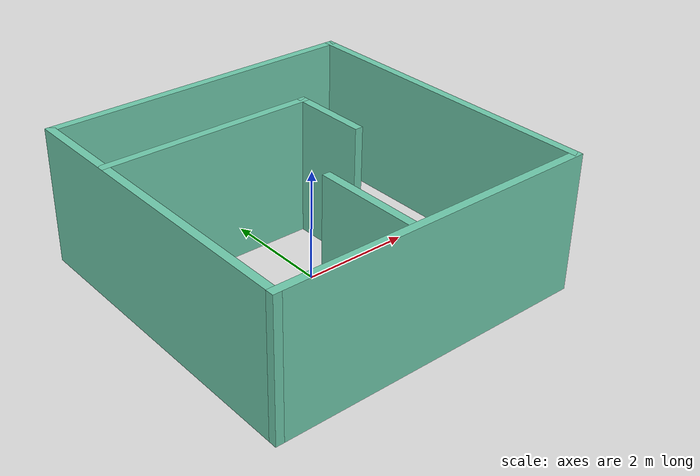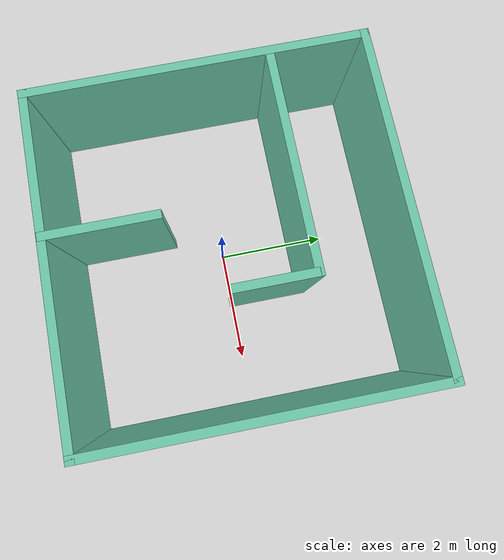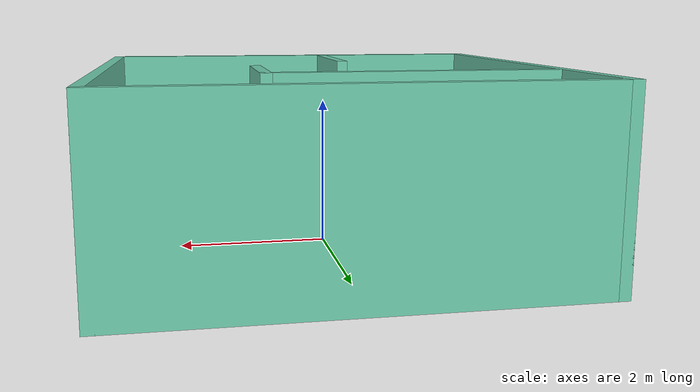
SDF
<?xml version='1.0'?>
<sdf version='1.7'>
  <model name='training_place'>
    <pose>0.016338 0.113868 0 0 -0 0</pose>
    <link name='Wall_11'>
      <collision name='Wall_11_Collision'>
        <geometry>
          <box>
            <size>6 0.15 2.5</size>
          </box>
        </geometry>
        <pose>0 0 1.25 0 -0 0</pose>
      </collision>
      <visual name='Wall_11_Visual'>
        <pose>0 0 1.25 0 -0 0</pose>
        <geometry>
          <box>
            <size>6 0.15 2.5</size>
          </box>
        </geometry>
        <material>
          <script>
            <uri>file://media/materials/scripts/gazebo.material</uri>
            <name>Gazebo/Grey</name>
          </script>
          <ambient>0.435294 0.796078 0.67451 1</ambient>
        </material>
        <meta>
          <layer>0</layer>
        </meta>
      </visual>
      <pose>0 2.925 0 0 -0 0</pose>
    </link>
    <link name='Wall_13'>
      <collision name='Wall_13_Collision'>
        <geometry>
          <box>
            <size>6 0.15 2.5</size>
          </box>
        </geometry>
        <pose>0 0 1.25 0 -0 0</pose>
      </collision>
      <visual name='Wall_13_Visual'>
        <pose>0 0 1.25 0 -0 0</pose>
        <geometry>
          <box>
            <size>6 0.15 2.5</size>
          </box>
        </geometry>
        <material>
          <script>
            <uri>file://media/materials/scripts/gazebo.material</uri>
            <name>Gazebo/Grey</name>
          </script>
          <ambient>0.435294 0.796078 0.67451 1</ambient>
        </material>
        <meta>
          <layer>0</layer>
        </meta>
      </visual>
      <pose>2.925 -0 0 0 -0 -1.5708</pose>
    </link>
    <link name='Wall_14'>
      <collision name='Wall_14_Collision'>
        <geometry>
          <box>
            <size>6 0.15 2.5</size>
          </box>
        </geometry>
        <pose>0 0 1.25 0 -0 0</pose>
      </collision>
      <visual name='Wall_14_Visual'>
        <pose>0 0 1.25 0 -0 0</pose>
        <geometry>
          <box>
            <size>6 0.15 2.5</size>
          </box>
        </geometry>
        <material>
          <script>
            <uri>file://media/materials/scripts/gazebo.material</uri>
            <name>Gazebo/Grey</name>
          </script>
          <ambient>0.435294 0.796078 0.67451 1</ambient>
        </material>
        <meta>
          <layer>0</layer>
        </meta>
      </visual>
      <pose>0 -2.925 0 0 -0 3.14159</pose>
    </link>
    <link name='Wall_15'>
      <collision name='Wall_15_Collision'>
        <geometry>
          <box>
            <size>6 0.15 2.5</size>
          </box>
        </geometry>
        <pose>0 0 1.25 0 -0 0</pose>
      </collision>
      <visual name='Wall_15_Visual'>
        <pose>0 0 1.25 0 -0 0</pose>
        <geometry>
          <box>
            <size>6 0.15 2.5</size>
          </box>
        </geometry>
        <material>
          <script>
            <uri>file://media/materials/scripts/gazebo.material</uri>
            <name>Gazebo/Grey</name>
          </script>
          <ambient>0.435294 0.796078 0.67451 1</ambient>
        </material>
        <meta>
          <layer>0</layer>
        </meta>
      </visual>
      <pose>-2.925 -0 0 0 -0 1.5708</pose>
    </link>
    <link name='Wall_20'>
      <collision name='Wall_20_Collision'>
        <geometry>
          <box>
            <size>2 0.15 2.5</size>
          </box>
        </geometry>
        <pose>0 0 1.25 0 -0 0</pose>
      </collision>
      <visual name='Wall_20_Visual'>
        <pose>0 0 1.25 0 -0 0</pose>
        <geometry>
          <box>
            <size>2 0.15 2.5</size>
          </box>
        </geometry>
        <material>
          <script>
            <uri>file://media/materials/scripts/gazebo.material</uri>
            <name>Gazebo/Grey</name>
          </script>
          <ambient>0.435294 0.796078 0.67451 1</ambient>
        </material>
        <meta>
          <layer>0</layer>
        </meta>
      </visual>
      <pose>-0.458901 -1.99168 0 0 -0 1.5708</pose>
    </link>
    <link name='Wall_22'>
      <collision name='Wall_22_Collision'>
        <geometry>
          <box>
            <size>4 0.15 2.5</size>
          </box>
        </geometry>
        <pose>0 0 1.25 0 -0 0</pose>
      </collision>
      <visual name='Wall_22_Visual'>
        <pose>0 0 1.25 0 -0 0</pose>
        <geometry>
          <box>
            <size>4 0.15 2.5</size>
          </box>
        </geometry>
        <material>
          <script>
            <uri>file://media/materials/scripts/gazebo.material</uri>
            <name>Gazebo/Grey</name>
          </script>
          <ambient>0.435294 0.796078 0.67451 1</ambient>
        </material>
        <meta>
          <layer>0</layer>
        </meta>
      </visual>
      <pose>-1 1.26344 0 0 -0 0</pose>
    </link>
    <link name='Wall_24'>
      <collision name='Wall_24_Collision'>
        <geometry>
          <box>
            <size>1.5 0.15 2.5</size>
          </box>
        </geometry>
        <pose>0 0 1.25 0 -0 0</pose>
      </collision>
      <visual name='Wall_24_Visual'>
        <pose>0 0 1.25 0 -0 0</pose>
        <geometry>
          <box>
            <size>1.5 0.15 2.5</size>
          </box>
        </geometry>
        <material>
          <script>
            <uri>file://media/materials/scripts/gazebo.material</uri>
            <name>Gazebo/Grey</name>
          </script>
          <ambient>0.435294 0.796078 0.67451 1</ambient>
        </material>
        <meta>
          <layer>0</layer>
        </meta>
      </visual>
      <pose>0.925 0.588444 0 0 -0 -1.5708</pose>
    </link>
    <static>1</static>
  </model>
</sdf>
